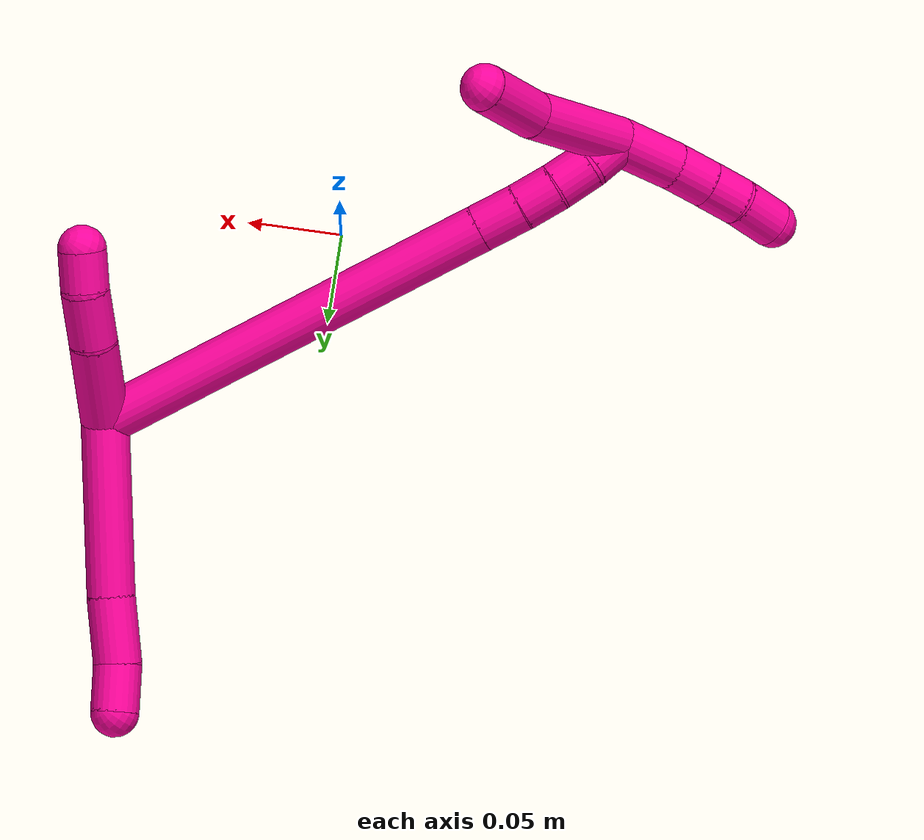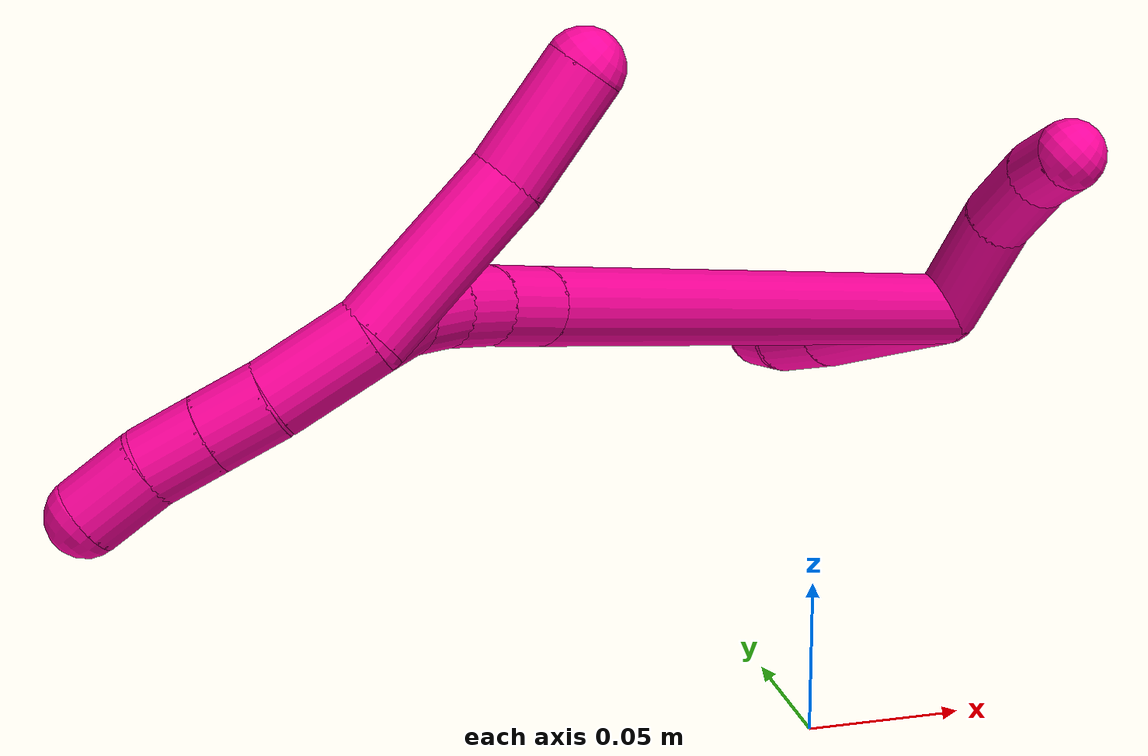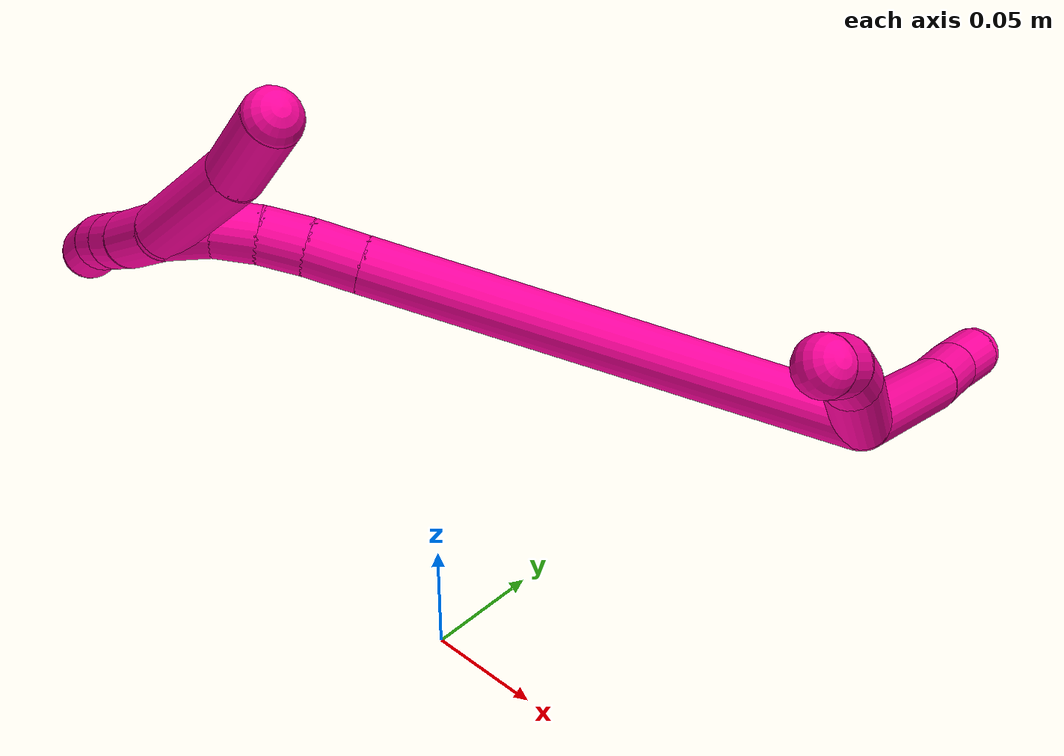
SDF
<sdf version="1.7">
 <world name="default">
  <model name="18">
   <static>0</static>
   <link name="18">
    <collision name="collision-cylinder-e_1_2_8">
     <pose>0.008772 0.038332 -0.021898 -2.08982 0.19616 -0.335867</pose>
     <geometry><cylinder><radius>0.0125</radius><length>0.090018</length></cylinder></geometry>
     <surface>
      <friction><ode><mu>1.16</mu><mu2>1.16</mu2><slip1>0</slip1><slip2>0</slip2></ode></friction>
      <contact><ode><kp>1e+06</kp><kd>1</kd><max_vel>0</max_vel><min_depth>0.001</min_depth></ode></contact>
     </surface>
    </collision>
    <visual name="visual-cylinder-e_1_2_8">
     <pose>0.008772 0.038332 -0.021898 -2.08982 0.19616 -0.335867</pose>
     <geometry><cylinder><radius>0.0125</radius><length>0.090018</length></cylinder></geometry>
     <material><ambient>1 0.007843 0.615686 1</ambient></material>
    </visual>
    <collision name="collision-cylinder-e_2_8_9">
     <pose>0.019598 0.091609 -0.052584 -2.10236 0.117852 -0.205527</pose>
     <geometry><cylinder><radius>0.0125</radius><length>0.034917</length></cylinder></geometry>
     <surface>
      <friction><ode><mu>1.16</mu><mu2>1.16</mu2><slip1>0</slip1><slip2>0</slip2></ode></friction>
      <contact><ode><kp>1e+06</kp><kd>1</kd><max_vel>0</max_vel><min_depth>0.001</min_depth></ode></contact>
     </surface>
    </collision>
    <visual name="visual-cylinder-e_2_8_9">
     <pose>0.019598 0.091609 -0.052584 -2.10236 0.117852 -0.205527</pose>
     <geometry><cylinder><radius>0.0125</radius><length>0.034917</length></cylinder></geometry>
     <material><ambient>1 0.007843 0.615686 1</ambient></material>
    </visual>
    <collision name="collision-cylinder-e_3_9_6">
     <pose>0.023365 0.118275 -0.065465 -1.90677 0.137241 -0.192997</pose>
     <geometry><cylinder><radius>0.0125</radius><length>0.025065</length></cylinder></geometry>
     <surface>
      <friction><ode><mu>1.16</mu><mu2>1.16</mu2><slip1>0</slip1><slip2>0</slip2></ode></friction>
      <contact><ode><kp>1e+06</kp><kd>1</kd><max_vel>0</max_vel><min_depth>0.001</min_depth></ode></contact>
     </surface>
    </collision>
    <visual name="visual-cylinder-e_3_9_6">
     <pose>0.023365 0.118275 -0.065465 -1.90677 0.137241 -0.192997</pose>
     <geometry><cylinder><radius>0.0125</radius><length>0.025065</length></cylinder></geometry>
     <material><ambient>1 0.007843 0.615686 1</ambient></material>
    </visual>
    <collision name="collision-cylinder-e_1_2_10">
     <pose>-0.012135 -0.011015 0.018848 0.528883 -0.507331 -0.140171</pose>
     <geometry><cylinder><radius>0.0125</radius><length>0.049954</length></cylinder></geometry>
     <surface>
      <friction><ode><mu>1.16</mu><mu2>1.16</mu2><slip1>0</slip1><slip2>0</slip2></ode></friction>
      <contact><ode><kp>1e+06</kp><kd>1</kd><max_vel>0</max_vel><min_depth>0.001</min_depth></ode></contact>
     </surface>
    </collision>
    <visual name="visual-cylinder-e_1_2_10">
     <pose>-0.012135 -0.011015 0.018848 0.528883 -0.507331 -0.140171</pose>
     <geometry><cylinder><radius>0.0125</radius><length>0.049954</length></cylinder></geometry>
     <material><ambient>1 0.007843 0.615686 1</ambient></material>
    </visual>
    <collision name="collision-cylinder-e_2_10_11">
     <pose>-0.029772 -0.030315 0.048235 0.666171 -0.389515 -0.136282</pose>
     <geometry><cylinder><radius>0.0125</radius><length>0.028982</length></cylinder></geometry>
     <surface>
      <friction><ode><mu>1.16</mu><mu2>1.16</mu2><slip1>0</slip1><slip2>0</slip2></ode></friction>
      <contact><ode><kp>1e+06</kp><kd>1</kd><max_vel>0</max_vel><min_depth>0.001</min_depth></ode></contact>
     </surface>
    </collision>
    <visual name="visual-cylinder-e_2_10_11">
     <pose>-0.029772 -0.030315 0.048235 0.666171 -0.389515 -0.136282</pose>
     <geometry><cylinder><radius>0.0125</radius><length>0.028982</length></cylinder></geometry>
     <material><ambient>1 0.007843 0.615686 1</ambient></material>
    </visual>
    <collision name="collision-cylinder-e_3_11_5">
     <pose>-0.038295 -0.046524 0.065019 0.903467 -0.290778 -0.141848</pose>
     <geometry><cylinder><radius>0.0125</radius><length>0.021065</length></cylinder></geometry>
     <surface>
      <friction><ode><mu>1.16</mu><mu2>1.16</mu2><slip1>0</slip1><slip2>0</slip2></ode></friction>
      <contact><ode><kp>1e+06</kp><kd>1</kd><max_vel>0</max_vel><min_depth>0.001</min_depth></ode></contact>
     </surface>
    </collision>
    <visual name="visual-cylinder-e_3_11_5">
     <pose>-0.038295 -0.046524 0.065019 0.903467 -0.290778 -0.141848</pose>
     <geometry><cylinder><radius>0.0125</radius><length>0.021065</length></cylinder></geometry>
     <material><ambient>1 0.007843 0.615686 1</ambient></material>
    </visual>
    <collision name="collision-cylinder-e_1_2_12">
     <pose>-0.08292 -0.057381 -0.038322 2.15962 -0.876763 -1.43974</pose>
     <geometry><cylinder><radius>0.0125</radius><length>0.215749</length></cylinder></geometry>
     <surface>
      <friction><ode><mu>1.16</mu><mu2>1.16</mu2><slip1>0</slip1><slip2>0</slip2></ode></friction>
      <contact><ode><kp>1e+06</kp><kd>1</kd><max_vel>0</max_vel><min_depth>0.001</min_depth></ode></contact>
     </surface>
    </collision>
    <visual name="visual-cylinder-e_1_2_12">
     <pose>-0.08292 -0.057381 -0.038322 2.15962 -0.876763 -1.43974</pose>
     <geometry><cylinder><radius>0.0125</radius><length>0.215749</length></cylinder></geometry>
     <material><ambient>1 0.007843 0.615686 1</ambient></material>
    </visual>
    <collision name="collision-cylinder-e_2_12_13">
     <pose>-0.174991 -0.121024 -0.080787 2.15526 -0.883637 -1.44339</pose>
     <geometry><cylinder><radius>0.0125</radius><length>0.023674</length></cylinder></geometry>
     <surface>
      <friction><ode><mu>1.16</mu><mu2>1.16</mu2><slip1>0</slip1><slip2>0</slip2></ode></friction>
      <contact><ode><kp>1e+06</kp><kd>1</kd><max_vel>0</max_vel><min_depth>0.001</min_depth></ode></contact>
     </surface>
    </collision>
    <visual name="visual-cylinder-e_2_12_13">
     <pose>-0.174991 -0.121024 -0.080787 2.15526 -0.883637 -1.44339</pose>
     <geometry><cylinder><radius>0.0125</radius><length>0.023674</length></cylinder></geometry>
     <material><ambient>1 0.007843 0.615686 1</ambient></material>
    </visual>
    <collision name="collision-cylinder-e_3_13_14">
     <pose>-0.191662 -0.133274 -0.088446 2.10168 -0.825253 -1.30561</pose>
     <geometry><cylinder><radius>0.0125</radius><length>0.02047</length></cylinder></geometry>
     <surface>
      <friction><ode><mu>1.16</mu><mu2>1.16</mu2><slip1>0</slip1><slip2>0</slip2></ode></friction>
      <contact><ode><kp>1e+06</kp><kd>1</kd><max_vel>0</max_vel><min_depth>0.001</min_depth></ode></contact>
     </surface>
    </collision>
    <visual name="visual-cylinder-e_3_13_14">
     <pose>-0.191662 -0.133274 -0.088446 2.10168 -0.825253 -1.30561</pose>
     <geometry><cylinder><radius>0.0125</radius><length>0.02047</length></cylinder></geometry>
     <material><ambient>1 0.007843 0.615686 1</ambient></material>
    </visual>
    <collision name="collision-cylinder-e_4_14_15">
     <pose>-0.205768 -0.145956 -0.095527 2.06022 -0.71502 -1.11321</pose>
     <geometry><cylinder><radius>0.0125</radius><length>0.020091</length></cylinder></geometry>
     <surface>
      <friction><ode><mu>1.16</mu><mu2>1.16</mu2><slip1>0</slip1><slip2>0</slip2></ode></friction>
      <contact><ode><kp>1e+06</kp><kd>1</kd><max_vel>0</max_vel><min_depth>0.001</min_depth></ode></contact>
     </surface>
    </collision>
    <visual name="visual-cylinder-e_4_14_15">
     <pose>-0.205768 -0.145956 -0.095527 2.06022 -0.71502 -1.11321</pose>
     <geometry><cylinder><radius>0.0125</radius><length>0.020091</length></cylinder></geometry>
     <material><ambient>1 0.007843 0.615686 1</ambient></material>
    </visual>
    <collision name="collision-cylinder-e_5_15_1">
     <pose>-0.217252 -0.160577 -0.102746 2.00263 -0.511444 -0.77538</pose>
     <geometry><cylinder><radius>0.0125</radius><length>0.020016</length></cylinder></geometry>
     <surface>
      <friction><ode><mu>1.16</mu><mu2>1.16</mu2><slip1>0</slip1><slip2>0</slip2></ode></friction>
      <contact><ode><kp>1e+06</kp><kd>1</kd><max_vel>0</max_vel><min_depth>0.001</min_depth></ode></contact>
     </surface>
    </collision>
    <visual name="visual-cylinder-e_5_15_1">
     <pose>-0.217252 -0.160577 -0.102746 2.00263 -0.511444 -0.77538</pose>
     <geometry><cylinder><radius>0.0125</radius><length>0.020016</length></cylinder></geometry>
     <material><ambient>1 0.007843 0.615686 1</ambient></material>
    </visual>
    <collision name="collision-cylinder-e_1_1_16">
     <pose>-0.221245 -0.160764 -0.077226 -0.259304 0.02997 -0.003908</pose>
     <geometry><cylinder><radius>0.0125</radius><length>0.060389</length></cylinder></geometry>
     <surface>
      <friction><ode><mu>1.16</mu><mu2>1.16</mu2><slip1>0</slip1><slip2>0</slip2></ode></friction>
      <contact><ode><kp>1e+06</kp><kd>1</kd><max_vel>0</max_vel><min_depth>0.001</min_depth></ode></contact>
     </surface>
    </collision>
    <visual name="visual-cylinder-e_1_1_16">
     <pose>-0.221245 -0.160764 -0.077226 -0.259304 0.02997 -0.003908</pose>
     <geometry><cylinder><radius>0.0125</radius><length>0.060389</length></cylinder></geometry>
     <material><ambient>1 0.007843 0.615686 1</ambient></material>
    </visual>
    <collision name="collision-cylinder-e_2_16_4">
     <pose>-0.223003 -0.149602 -0.02873 -0.175352 -0.134853 0.011872</pose>
     <geometry><cylinder><radius>0.0125</radius><length>0.039611</length></cylinder></geometry>
     <surface>
      <friction><ode><mu>1.16</mu><mu2>1.16</mu2><slip1>0</slip1><slip2>0</slip2></ode></friction>
      <contact><ode><kp>1e+06</kp><kd>1</kd><max_vel>0</max_vel><min_depth>0.001</min_depth></ode></contact>
     </surface>
    </collision>
    <visual name="visual-cylinder-e_2_16_4">
     <pose>-0.223003 -0.149602 -0.02873 -0.175352 -0.134853 0.011872</pose>
     <geometry><cylinder><radius>0.0125</radius><length>0.039611</length></cylinder></geometry>
     <material><ambient>1 0.007843 0.615686 1</ambient></material>
    </visual>
    <collision name="collision-cylinder-e_1_1_17">
     <pose>-0.225976 -0.169053 -0.123051 3.10855 -0.225678 -2.85205</pose>
     <geometry><cylinder><radius>0.0125</radius><length>0.03419</length></cylinder></geometry>
     <surface>
      <friction><ode><mu>1.16</mu><mu2>1.16</mu2><slip1>0</slip1><slip2>0</slip2></ode></friction>
      <contact><ode><kp>1e+06</kp><kd>1</kd><max_vel>0</max_vel><min_depth>0.001</min_depth></ode></contact>
     </surface>
    </collision>
    <visual name="visual-cylinder-e_1_1_17">
     <pose>-0.225976 -0.169053 -0.123051 3.10855 -0.225678 -2.85205</pose>
     <geometry><cylinder><radius>0.0125</radius><length>0.03419</length></cylinder></geometry>
     <material><ambient>1 0.007843 0.615686 1</ambient></material>
    </visual>
    <collision name="collision-cylinder-e_2_17_18">
     <pose>-0.232563 -0.168994 -0.149977 -3.0823 -0.262191 2.69911</pose>
     <geometry><cylinder><radius>0.0125</radius><length>0.021312</length></cylinder></geometry>
     <surface>
      <friction><ode><mu>1.16</mu><mu2>1.16</mu2><slip1>0</slip1><slip2>0</slip2></ode></friction>
      <contact><ode><kp>1e+06</kp><kd>1</kd><max_vel>0</max_vel><min_depth>0.001</min_depth></ode></contact>
     </surface>
    </collision>
    <visual name="visual-cylinder-e_2_17_18">
     <pose>-0.232563 -0.168994 -0.149977 -3.0823 -0.262191 2.69911</pose>
     <geometry><cylinder><radius>0.0125</radius><length>0.021312</length></cylinder></geometry>
     <material><ambient>1 0.007843 0.615686 1</ambient></material>
    </visual>
    <collision name="collision-cylinder-e_3_18_19">
     <pose>-0.23788 -0.167728 -0.170123 -3.07524 -0.252736 2.63058</pose>
     <geometry><cylinder><radius>0.0125</radius><length>0.020438</length></cylinder></geometry>
     <surface>
      <friction><ode><mu>1.16</mu><mu2>1.16</mu2><slip1>0</slip1><slip2>0</slip2></ode></friction>
      <contact><ode><kp>1e+06</kp><kd>1</kd><max_vel>0</max_vel><min_depth>0.001</min_depth></ode></contact>
     </surface>
    </collision>
    <visual name="visual-cylinder-e_3_18_19">
     <pose>-0.23788 -0.167728 -0.170123 -3.07524 -0.252736 2.63058</pose>
     <geometry><cylinder><radius>0.0125</radius><length>0.020438</length></cylinder></geometry>
     <material><ambient>1 0.007843 0.615686 1</ambient></material>
    </visual>
    <collision name="collision-cylinder-e_4_19_3">
     <pose>-0.24161 -0.166565 -0.191957 -3.09922 -0.097823 2.32453</pose>
     <geometry><cylinder><radius>0.0125</radius><length>0.02406</length></cylinder></geometry>
     <surface>
      <friction><ode><mu>1.16</mu><mu2>1.16</mu2><slip1>0</slip1><slip2>0</slip2></ode></friction>
      <contact><ode><kp>1e+06</kp><kd>1</kd><max_vel>0</max_vel><min_depth>0.001</min_depth></ode></contact>
     </surface>
    </collision>
    <visual name="visual-cylinder-e_4_19_3">
     <pose>-0.24161 -0.166565 -0.191957 -3.09922 -0.097823 2.32453</pose>
     <geometry><cylinder><radius>0.0125</radius><length>0.02406</length></cylinder></geometry>
     <material><ambient>1 0.007843 0.615686 1</ambient></material>
    </visual>
    <collision name="collision-sphere-3">
     <pose>-0.242785 -0.166058 -0.203919 0 -0 0</pose>
     <geometry><sphere><radius>0.0125</radius></sphere></geometry>
     <surface>
      <friction><ode><mu>1.16</mu><mu2>1.16</mu2><slip1>0</slip1><slip2>0</slip2></ode></friction>
      <contact><ode><kp>1e+06</kp><kd>1</kd><max_vel>0</max_vel><min_depth>0.001</min_depth></ode></contact>
     </surface>
    </collision>
    <visual name="visual-sphere-3">
     <pose>-0.242785 -0.166058 -0.203919 0 -0 0</pose>
     <geometry><sphere><radius>0.0125</radius></sphere></geometry>
     <material><ambient>1 0.007843 0.615686 1</ambient></material>
    </visual>
    <collision name="collision-sphere-19">
     <pose>-0.240435 -0.167072 -0.179996 0 -0 0</pose>
     <geometry><sphere><radius>0.0125</radius></sphere></geometry>
     <surface>
      <friction><ode><mu>1.16</mu><mu2>1.16</mu2><slip1>0</slip1><slip2>0</slip2></ode></friction>
      <contact><ode><kp>1e+06</kp><kd>1</kd><max_vel>0</max_vel><min_depth>0.001</min_depth></ode></contact>
     </surface>
    </collision>
    <visual name="visual-sphere-19">
     <pose>-0.240435 -0.167072 -0.179996 0 -0 0</pose>
     <geometry><sphere><radius>0.0125</radius></sphere></geometry>
     <material><ambient>1 0.007843 0.615686 1</ambient></material>
    </visual>
    <collision name="collision-sphere-11">
     <pose>-0.035275 -0.038599 0.058775 0 -0 0</pose>
     <geometry><sphere><radius>0.0125</radius></sphere></geometry>
     <surface>
      <friction><ode><mu>1.16</mu><mu2>1.16</mu2><slip1>0</slip1><slip2>0</slip2></ode></friction>
      <contact><ode><kp>1e+06</kp><kd>1</kd><max_vel>0</max_vel><min_depth>0.001</min_depth></ode></contact>
     </surface>
    </collision>
    <visual name="visual-sphere-11">
     <pose>-0.035275 -0.038599 0.058775 0 -0 0</pose>
     <geometry><sphere><radius>0.0125</radius></sphere></geometry>
     <material><ambient>1 0.007843 0.615686 1</ambient></material>
    </visual>
    <collision name="collision-sphere-10">
     <pose>-0.02427 -0.02203 0.037696 0 -0 0</pose>
     <geometry><sphere><radius>0.0125</radius></sphere></geometry>
     <surface>
      <friction><ode><mu>1.16</mu><mu2>1.16</mu2><slip1>0</slip1><slip2>0</slip2></ode></friction>
      <contact><ode><kp>1e+06</kp><kd>1</kd><max_vel>0</max_vel><min_depth>0.001</min_depth></ode></contact>
     </surface>
    </collision>
    <visual name="visual-sphere-10">
     <pose>-0.02427 -0.02203 0.037696 0 -0 0</pose>
     <geometry><sphere><radius>0.0125</radius></sphere></geometry>
     <material><ambient>1 0.007843 0.615686 1</ambient></material>
    </visual>
    <collision name="collision-sphere-6">
     <pose>0.02508 0.129995 -0.069558 0 -0 0</pose>
     <geometry><sphere><radius>0.0125</radius></sphere></geometry>
     <surface>
      <friction><ode><mu>1.16</mu><mu2>1.16</mu2><slip1>0</slip1><slip2>0</slip2></ode></friction>
      <contact><ode><kp>1e+06</kp><kd>1</kd><max_vel>0</max_vel><min_depth>0.001</min_depth></ode></contact>
     </surface>
    </collision>
    <visual name="visual-sphere-6">
     <pose>0.02508 0.129995 -0.069558 0 -0 0</pose>
     <geometry><sphere><radius>0.0125</radius></sphere></geometry>
     <material><ambient>1 0.007843 0.615686 1</ambient></material>
    </visual>
    <collision name="collision-sphere-9">
     <pose>0.02165 0.106555 -0.061372 0 -0 0</pose>
     <geometry><sphere><radius>0.0125</radius></sphere></geometry>
     <surface>
      <friction><ode><mu>1.16</mu><mu2>1.16</mu2><slip1>0</slip1><slip2>0</slip2></ode></friction>
      <contact><ode><kp>1e+06</kp><kd>1</kd><max_vel>0</max_vel><min_depth>0.001</min_depth></ode></contact>
     </surface>
    </collision>
    <visual name="visual-sphere-9">
     <pose>0.02165 0.106555 -0.061372 0 -0 0</pose>
     <geometry><sphere><radius>0.0125</radius></sphere></geometry>
     <material><ambient>1 0.007843 0.615686 1</ambient></material>
    </visual>
    <collision name="collision-sphere-2">
     <geometry><sphere><radius>0.0125</radius></sphere></geometry>
     <surface>
      <friction><ode><mu>1.16</mu><mu2>1.16</mu2><slip1>0</slip1><slip2>0</slip2></ode></friction>
      <contact><ode><kp>1e+06</kp><kd>1</kd><max_vel>0</max_vel><min_depth>0.001</min_depth></ode></contact>
     </surface>
    </collision>
    <visual name="visual-sphere-2">
     <geometry><sphere><radius>0.0125</radius></sphere></geometry>
     <material><ambient>1 0.007843 0.615686 1</ambient></material>
    </visual>
    <collision name="collision-sphere-8">
     <pose>0.017545 0.076664 -0.043796 0 -0 0</pose>
     <geometry><sphere><radius>0.0125</radius></sphere></geometry>
     <surface>
      <friction><ode><mu>1.16</mu><mu2>1.16</mu2><slip1>0</slip1><slip2>0</slip2></ode></friction>
      <contact><ode><kp>1e+06</kp><kd>1</kd><max_vel>0</max_vel><min_depth>0.001</min_depth></ode></contact>
     </surface>
    </collision>
    <visual name="visual-sphere-8">
     <pose>0.017545 0.076664 -0.043796 0 -0 0</pose>
     <geometry><sphere><radius>0.0125</radius></sphere></geometry>
     <material><ambient>1 0.007843 0.615686 1</ambient></material>
    </visual>
    <collision name="collision-sphere-5">
     <pose>-0.041314 -0.05445 0.071264 0 -0 0</pose>
     <geometry><sphere><radius>0.0125</radius></sphere></geometry>
     <surface>
      <friction><ode><mu>1.16</mu><mu2>1.16</mu2><slip1>0</slip1><slip2>0</slip2></ode></friction>
      <contact><ode><kp>1e+06</kp><kd>1</kd><max_vel>0</max_vel><min_depth>0.001</min_depth></ode></contact>
     </surface>
    </collision>
    <visual name="visual-sphere-5">
     <pose>-0.041314 -0.05445 0.071264 0 -0 0</pose>
     <geometry><sphere><radius>0.0125</radius></sphere></geometry>
     <material><ambient>1 0.007843 0.615686 1</ambient></material>
    </visual>
    <collision name="collision-sphere-12">
     <pose>-0.165841 -0.114762 -0.076645 0 -0 0</pose>
     <geometry><sphere><radius>0.0125</radius></sphere></geometry>
     <surface>
      <friction><ode><mu>1.16</mu><mu2>1.16</mu2><slip1>0</slip1><slip2>0</slip2></ode></friction>
      <contact><ode><kp>1e+06</kp><kd>1</kd><max_vel>0</max_vel><min_depth>0.001</min_depth></ode></contact>
     </surface>
    </collision>
    <visual name="visual-sphere-12">
     <pose>-0.165841 -0.114762 -0.076645 0 -0 0</pose>
     <geometry><sphere><radius>0.0125</radius></sphere></geometry>
     <material><ambient>1 0.007843 0.615686 1</ambient></material>
    </visual>
    <collision name="collision-sphere-13">
     <pose>-0.184142 -0.127287 -0.08493 0 -0 0</pose>
     <geometry><sphere><radius>0.0125</radius></sphere></geometry>
     <surface>
      <friction><ode><mu>1.16</mu><mu2>1.16</mu2><slip1>0</slip1><slip2>0</slip2></ode></friction>
      <contact><ode><kp>1e+06</kp><kd>1</kd><max_vel>0</max_vel><min_depth>0.001</min_depth></ode></contact>
     </surface>
    </collision>
    <visual name="visual-sphere-13">
     <pose>-0.184142 -0.127287 -0.08493 0 -0 0</pose>
     <geometry><sphere><radius>0.0125</radius></sphere></geometry>
     <material><ambient>1 0.007843 0.615686 1</ambient></material>
    </visual>
    <collision name="collision-sphere-14">
     <pose>-0.199181 -0.139261 -0.091961 0 -0 0</pose>
     <geometry><sphere><radius>0.0125</radius></sphere></geometry>
     <surface>
      <friction><ode><mu>1.16</mu><mu2>1.16</mu2><slip1>0</slip1><slip2>0</slip2></ode></friction>
      <contact><ode><kp>1e+06</kp><kd>1</kd><max_vel>0</max_vel><min_depth>0.001</min_depth></ode></contact>
     </surface>
    </collision>
    <visual name="visual-sphere-14">
     <pose>-0.199181 -0.139261 -0.091961 0 -0 0</pose>
     <geometry><sphere><radius>0.0125</radius></sphere></geometry>
     <material><ambient>1 0.007843 0.615686 1</ambient></material>
    </visual>
    <collision name="collision-sphere-15">
     <pose>-0.212354 -0.152651 -0.099093 0 -0 0</pose>
     <geometry><sphere><radius>0.0125</radius></sphere></geometry>
     <surface>
      <friction><ode><mu>1.16</mu><mu2>1.16</mu2><slip1>0</slip1><slip2>0</slip2></ode></friction>
      <contact><ode><kp>1e+06</kp><kd>1</kd><max_vel>0</max_vel><min_depth>0.001</min_depth></ode></contact>
     </surface>
    </collision>
    <visual name="visual-sphere-15">
     <pose>-0.212354 -0.152651 -0.099093 0 -0 0</pose>
     <geometry><sphere><radius>0.0125</radius></sphere></geometry>
     <material><ambient>1 0.007843 0.615686 1</ambient></material>
    </visual>
    <collision name="collision-sphere-1">
     <pose>-0.22215 -0.168503 -0.106398 0 -0 0</pose>
     <geometry><sphere><radius>0.0125</radius></sphere></geometry>
     <surface>
      <friction><ode><mu>1.16</mu><mu2>1.16</mu2><slip1>0</slip1><slip2>0</slip2></ode></friction>
      <contact><ode><kp>1e+06</kp><kd>1</kd><max_vel>0</max_vel><min_depth>0.001</min_depth></ode></contact>
     </surface>
    </collision>
    <visual name="visual-sphere-1">
     <pose>-0.22215 -0.168503 -0.106398 0 -0 0</pose>
     <geometry><sphere><radius>0.0125</radius></sphere></geometry>
     <material><ambient>1 0.007843 0.615686 1</ambient></material>
    </visual>
    <collision name="collision-sphere-18">
     <pose>-0.235325 -0.168384 -0.160251 0 -0 0</pose>
     <geometry><sphere><radius>0.0125</radius></sphere></geometry>
     <surface>
      <friction><ode><mu>1.16</mu><mu2>1.16</mu2><slip1>0</slip1><slip2>0</slip2></ode></friction>
      <contact><ode><kp>1e+06</kp><kd>1</kd><max_vel>0</max_vel><min_depth>0.001</min_depth></ode></contact>
     </surface>
    </collision>
    <visual name="visual-sphere-18">
     <pose>-0.235325 -0.168384 -0.160251 0 -0 0</pose>
     <geometry><sphere><radius>0.0125</radius></sphere></geometry>
     <material><ambient>1 0.007843 0.615686 1</ambient></material>
    </visual>
    <collision name="collision-sphere-16">
     <pose>-0.220341 -0.153026 -0.048054 0 -0 0</pose>
     <geometry><sphere><radius>0.0125</radius></sphere></geometry>
     <surface>
      <friction><ode><mu>1.16</mu><mu2>1.16</mu2><slip1>0</slip1><slip2>0</slip2></ode></friction>
      <contact><ode><kp>1e+06</kp><kd>1</kd><max_vel>0</max_vel><min_depth>0.001</min_depth></ode></contact>
     </surface>
    </collision>
    <visual name="visual-sphere-16">
     <pose>-0.220341 -0.153026 -0.048054 0 -0 0</pose>
     <geometry><sphere><radius>0.0125</radius></sphere></geometry>
     <material><ambient>1 0.007843 0.615686 1</ambient></material>
    </visual>
    <collision name="collision-sphere-4">
     <pose>-0.225666 -0.146178 -0.009405 0 -0 0</pose>
     <geometry><sphere><radius>0.0125</radius></sphere></geometry>
     <surface>
      <friction><ode><mu>1.16</mu><mu2>1.16</mu2><slip1>0</slip1><slip2>0</slip2></ode></friction>
      <contact><ode><kp>1e+06</kp><kd>1</kd><max_vel>0</max_vel><min_depth>0.001</min_depth></ode></contact>
     </surface>
    </collision>
    <visual name="visual-sphere-4">
     <pose>-0.225666 -0.146178 -0.009405 0 -0 0</pose>
     <geometry><sphere><radius>0.0125</radius></sphere></geometry>
     <material><ambient>1 0.007843 0.615686 1</ambient></material>
    </visual>
    <collision name="collision-sphere-17">
     <pose>-0.229801 -0.169604 -0.139703 0 -0 0</pose>
     <geometry><sphere><radius>0.0125</radius></sphere></geometry>
     <surface>
      <friction><ode><mu>1.16</mu><mu2>1.16</mu2><slip1>0</slip1><slip2>0</slip2></ode></friction>
      <contact><ode><kp>1e+06</kp><kd>1</kd><max_vel>0</max_vel><min_depth>0.001</min_depth></ode></contact>
     </surface>
    </collision>
    <visual name="visual-sphere-17">
     <pose>-0.229801 -0.169604 -0.139703 0 -0 0</pose>
     <geometry><sphere><radius>0.0125</radius></sphere></geometry>
     <material><ambient>1 0.007843 0.615686 1</ambient></material>
    </visual>
    <inertial>
     <pose>-0.106942 -0.065821 -0.052008 0 -0 0</pose>
     <mass>0.75</mass>
     <inertia>
      <ixx>-0.00041</ixx>
      <ixy>0</ixy>
      <ixz>0</ixz>
      <iyy>-7.1e-05</iyy>
      <iyz>0</iyz>
      <izz>0.001037</izz>
     </inertia>
    </inertial>
   </link>
   <pose>0.099184 0.149652 0.085185 0.159188 0.787368 0.055904</pose>
  </model>
 </world>
</sdf>
